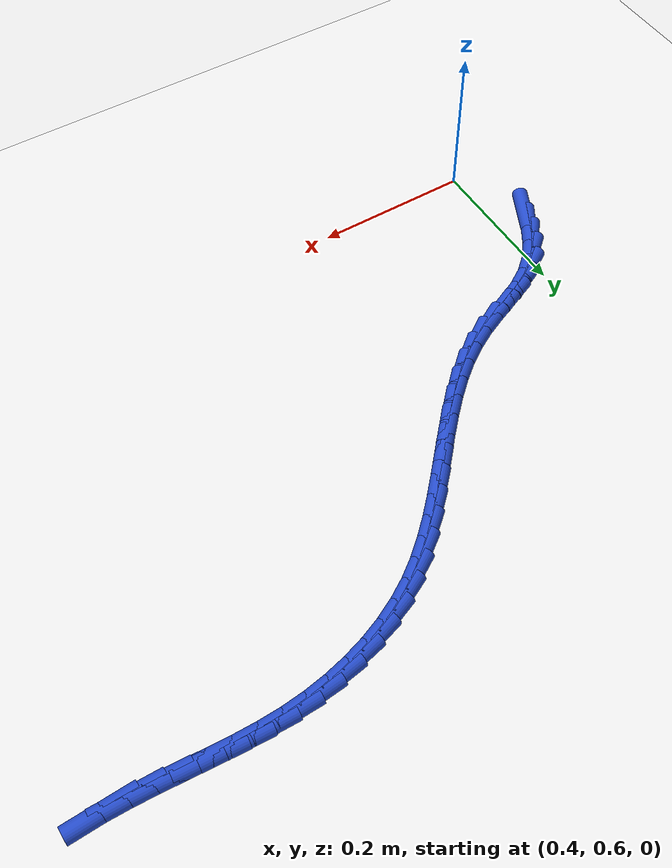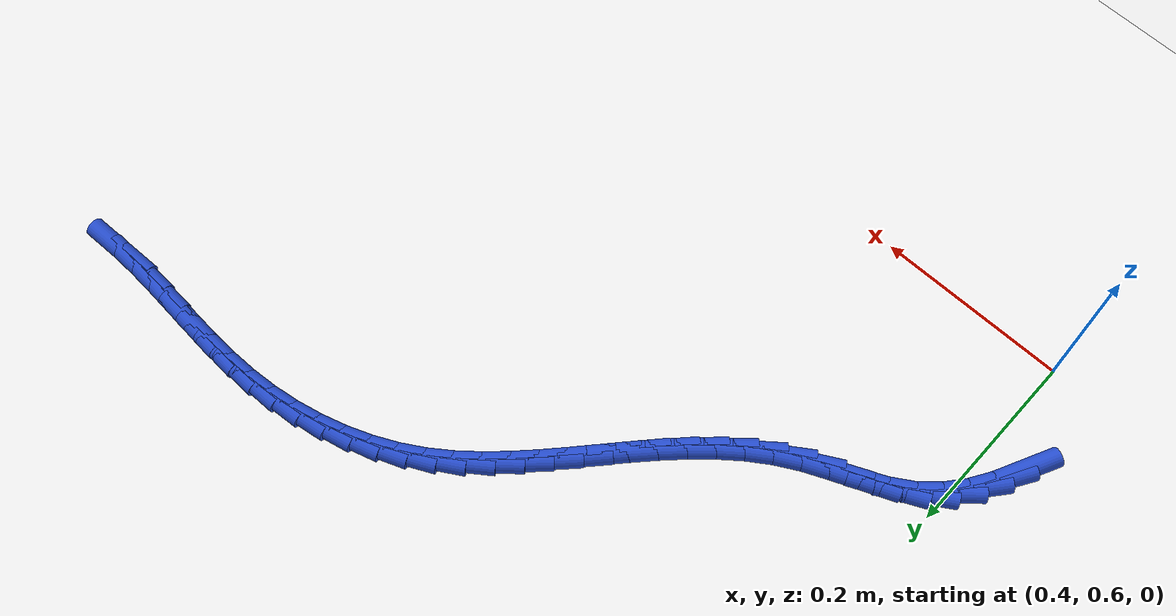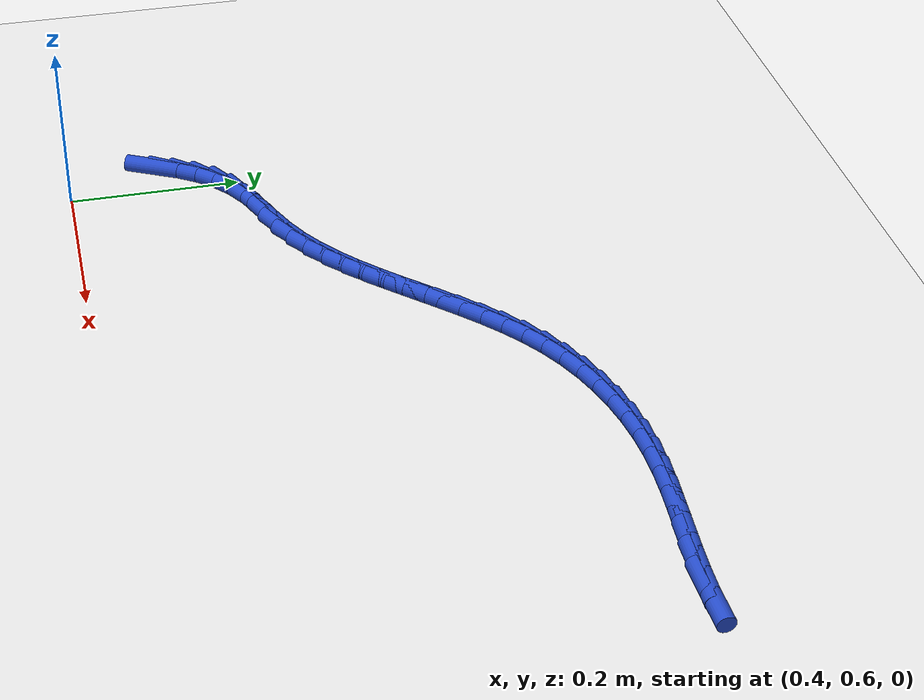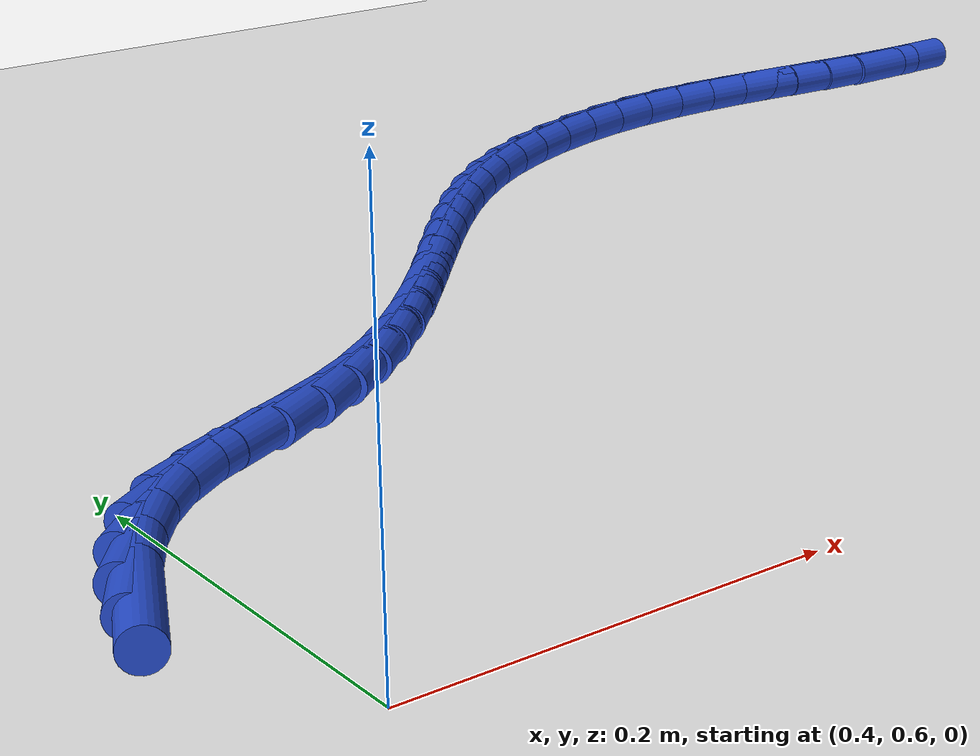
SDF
<sdf version="1.6">
 <world name="default">
  <model name="ground_plane">
   <static>1</static>
   <link name="link">
    <collision name="collision">
     <geometry><plane><normal>0 0 1</normal><size>100 100</size></plane></geometry>
     <surface><friction><ode><mu>100</mu><mu2>50</mu2></ode></friction></surface>
    </collision>
    <visual name="visual">
     <cast_shadows>0</cast_shadows>
     <geometry><plane><normal>0 0 1</normal><size>100 100</size></plane></geometry>
     <material>
      <script><uri>file://media/materials/scripts/gazebo.material</uri><name>Gazebo/WhiteGlow</name></script>
     </material>
    </visual>
   </link>
  </model>
  <model name="line">
   <link name="link_30">
    <pose>0.36268832998383616 0.7085970020839042 0.01 0 1.57 1.1177318025531953</pose>
    <collision name="collision">
     <geometry><cylinder><radius>0.01</radius><length>0.08</length></cylinder></geometry>
    </collision>
    <visual name="visual">
     <material>
      <script><name>Gazebo/Blue</name><uri>file://media/materials/scripts/gazebo.material</uri></script>
     </material>
     <geometry><cylinder><radius>0.01</radius><length>0.08</length></cylinder></geometry>
    </visual>
   </link>
   <link name="link_31">
    <pose>0.37431745973488123 0.732483952362341 0.01 0 1.57 1.0134871277024728</pose>
    <collision name="collision">
     <geometry><cylinder><radius>0.01</radius><length>0.08</length></cylinder></geometry>
    </collision>
    <visual name="visual">
     <material>
      <script><name>Gazebo/Blue</name><uri>file://media/materials/scripts/gazebo.material</uri></script>
     </material>
     <geometry><cylinder><radius>0.01</radius><length>0.08</length></cylinder></geometry>
    </visual>
   </link>
   <link name="link_32">
    <pose>0.3879580186429441 0.7543716247838177 0.01 0 1.57 0.8817394334140569</pose>
    <collision name="collision">
     <geometry><cylinder><radius>0.01</radius><length>0.08</length></cylinder></geometry>
    </collision>
    <visual name="visual">
     <material>
      <script><name>Gazebo/Blue</name><uri>file://media/materials/scripts/gazebo.material</uri></script>
     </material>
     <geometry><cylinder><radius>0.01</radius><length>0.08</length></cylinder></geometry>
    </visual>
   </link>
   <link name="link_33">
    <pose>0.40403640084455655 0.7738901036250615 0.01 0 1.57 0.7249146118301343</pose>
    <collision name="collision">
     <geometry><cylinder><radius>0.01</radius><length>0.08</length></cylinder></geometry>
    </collision>
    <visual name="visual">
     <material>
      <script><name>Gazebo/Blue</name><uri>file://media/materials/scripts/gazebo.material</uri></script>
     </material>
     <geometry><cylinder><radius>0.01</radius><length>0.08</length></cylinder></geometry>
    </visual>
   </link>
   <link name="link_34">
    <pose>0.4229790004762498 0.7906694731627986 0.01 0 1.57 0.5577782972668263</pose>
    <collision name="collision">
     <geometry><cylinder><radius>0.01</radius><length>0.08</length></cylinder></geometry>
    </collision>
    <visual name="visual">
     <material>
      <script><name>Gazebo/Blue</name><uri>file://media/materials/scripts/gazebo.material</uri></script>
     </material>
     <geometry><cylinder><radius>0.01</radius><length>0.08</length></cylinder></geometry>
    </visual>
   </link>
   <link name="link_35">
    <pose>0.4450906025545133 0.8044639919627228 0.01 0 1.57 0.4430533188256063</pose>
    <collision name="collision">
     <geometry><cylinder><radius>0.01</radius><length>0.08</length></cylinder></geometry>
    </collision>
    <visual name="visual">
     <material>
      <script><name>Gazebo/Blue</name><uri>file://media/materials/scripts/gazebo.material</uri></script>
     </material>
     <geometry><cylinder><radius>0.01</radius><length>0.08</length></cylinder></geometry>
    </visual>
   </link>
   <link name="link_36">
    <pose>0.4696217404852276 0.8161044081177452 0.01 0 1.57 0.4006804732066973</pose>
    <collision name="collision">
     <geometry><cylinder><radius>0.01</radius><length>0.08</length></cylinder></geometry>
    </collision>
    <visual name="visual">
     <material>
      <script><name>Gazebo/Blue</name><uri>file://media/materials/scripts/gazebo.material</uri></script>
     </material>
     <geometry><cylinder><radius>0.01</radius><length>0.08</length></cylinder></geometry>
    </visual>
   </link>
   <link name="link_37">
    <pose>0.495281894636061 0.8269739354921776 0.01 0 1.57 0.42330920103418146</pose>
    <collision name="collision">
     <geometry><cylinder><radius>0.01</radius><length>0.08</length></cylinder></geometry>
    </collision>
    <visual name="visual">
     <material>
      <script><name>Gazebo/Blue</name><uri>file://media/materials/scripts/gazebo.material</uri></script>
     </material>
     <geometry><cylinder><radius>0.01</radius><length>0.08</length></cylinder></geometry>
    </visual>
   </link>
   <link name="link_38">
    <pose>0.5207761265441244 0.8384602999897428 0.01 0 1.57 0.5047239543164519</pose>
    <collision name="collision">
     <geometry><cylinder><radius>0.01</radius><length>0.08</length></cylinder></geometry>
    </collision>
    <visual name="visual">
     <material>
      <script><name>Gazebo/Blue</name><uri>file://media/materials/scripts/gazebo.material</uri></script>
     </material>
     <geometry><cylinder><radius>0.01</radius><length>0.08</length></cylinder></geometry>
    </visual>
   </link>
   <link name="link_39">
    <pose>0.5449376407251897 0.8518083818414227 0.01 0 1.57 0.5968045073643752</pose>
    <collision name="collision">
     <geometry><cylinder><radius>0.01</radius><length>0.08</length></cylinder></geometry>
    </collision>
    <visual name="visual">
     <material>
      <script><name>Gazebo/Blue</name><uri>file://media/materials/scripts/gazebo.material</uri></script>
     </material>
     <geometry><cylinder><radius>0.01</radius><length>0.08</length></cylinder></geometry>
    </visual>
   </link>
   <link name="link_40">
    <pose>0.5675673778428116 0.8671842903419158 0.01 0 1.57 0.6748686698634557</pose>
    <collision name="collision">
     <geometry><cylinder><radius>0.01</radius><length>0.08</length></cylinder></geometry>
    </collision>
    <visual name="visual">
     <material>
      <script><name>Gazebo/Blue</name><uri>file://media/materials/scripts/gazebo.material</uri></script>
     </material>
     <geometry><cylinder><radius>0.01</radius><length>0.08</length></cylinder></geometry>
    </visual>
   </link>
   <link name="link_41">
    <pose>0.5889082469518588 0.8842614564289191 0.01 0 1.57 0.7377435125972711</pose>
    <collision name="collision">
     <geometry><cylinder><radius>0.01</radius><length>0.08</length></cylinder></geometry>
    </collision>
    <visual name="visual">
     <material>
      <script><name>Gazebo/Blue</name><uri>file://media/materials/scripts/gazebo.material</uri></script>
     </material>
     <geometry><cylinder><radius>0.01</radius><length>0.08</length></cylinder></geometry>
    </visual>
   </link>
   <link name="link_42">
    <pose>0.6092054243479514 0.9027107836638025 0.01 0 1.57 0.7852373563932779</pose>
    <collision name="collision">
     <geometry><cylinder><radius>0.01</radius><length>0.08</length></cylinder></geometry>
    </collision>
    <visual name="visual">
     <material>
      <script><name>Gazebo/Blue</name><uri>file://media/materials/scripts/gazebo.material</uri></script>
     </material>
     <geometry><cylinder><radius>0.01</radius><length>0.08</length></cylinder></geometry>
    </visual>
   </link>
   <link name="link_43">
    <pose>0.6287040863267105 0.9222031756079367 0.01 0 1.57 0.8175960525939158</pose>
    <collision name="collision">
     <geometry><cylinder><radius>0.01</radius><length>0.08</length></cylinder></geometry>
    </collision>
    <visual name="visual">
     <material>
      <script><name>Gazebo/Blue</name><uri>file://media/materials/scripts/gazebo.material</uri></script>
     </material>
     <geometry><cylinder><radius>0.01</radius><length>0.08</length></cylinder></geometry>
    </visual>
   </link>
   <link name="link_44">
    <pose>0.6476494091837564 0.942409535822691 0.01 0 1.57 0.8351697216548243</pose>
    <collision name="collision">
     <geometry><cylinder><radius>0.01</radius><length>0.08</length></cylinder></geometry>
    </collision>
    <visual name="visual">
     <material>
      <script><name>Gazebo/Blue</name><uri>file://media/materials/scripts/gazebo.material</uri></script>
     </material>
     <geometry><cylinder><radius>0.01</radius><length>0.08</length></cylinder></geometry>
    </visual>
   </link>
   <link name="link_45">
    <pose>0.66628656921471 0.9630007678694362 0.01 0 1.57 0.8381989010319875</pose>
    <collision name="collision">
     <geometry><cylinder><radius>0.01</radius><length>0.08</length></cylinder></geometry>
    </collision>
    <visual name="visual">
     <material>
      <script><name>Gazebo/Blue</name><uri>file://media/materials/scripts/gazebo.material</uri></script>
     </material>
     <geometry><cylinder><radius>0.01</radius><length>0.08</length></cylinder></geometry>
    </visual>
   </link>
   <link name="link_46">
    <pose>0.684860742715192 0.9836477753095424 0.01 0 1.57 0.8267066490759889</pose>
    <collision name="collision">
     <geometry><cylinder><radius>0.01</radius><length>0.08</length></cylinder></geometry>
    </collision>
    <visual name="visual">
     <material>
      <script><name>Gazebo/Blue</name><uri>file://media/materials/scripts/gazebo.material</uri></script>
     </material>
     <geometry><cylinder><radius>0.01</radius><length>0.08</length></cylinder></geometry>
    </visual>
   </link>
   <link name="link_47">
    <pose>0.7036171059808235 1.0040214617043794 0.01 0 1.57 0.8004795410268588</pose>
    <collision name="collision">
     <geometry><cylinder><radius>0.01</radius><length>0.08</length></cylinder></geometry>
    </collision>
    <visual name="visual">
     <material>
      <script><name>Gazebo/Blue</name><uri>file://media/materials/scripts/gazebo.material</uri></script>
     </material>
     <geometry><cylinder><radius>0.01</radius><length>0.08</length></cylinder></geometry>
    </visual>
   </link>
   <link name="link_48">
    <pose>0.7228008353072249 1.0237927306153183 0.01 0 1.57 0.7591349251705215</pose>
    <collision name="collision">
     <geometry><cylinder><radius>0.01</radius><length>0.08</length></cylinder></geometry>
    </collision>
    <visual name="visual">
     <material>
      <script><name>Gazebo/Blue</name><uri>file://media/materials/scripts/gazebo.material</uri></script>
     </material>
     <geometry><cylinder><radius>0.01</radius><length>0.08</length></cylinder></geometry>
    </visual>
   </link>
   <link name="link_49">
    <pose>0.742657106990017 1.0426324856037281 0.01 0 1.57 0.7022892694925332</pose>
    <collision name="collision">
     <geometry><cylinder><radius>0.01</radius><length>0.08</length></cylinder></geometry>
    </collision>
    <visual name="visual">
     <material>
      <script><name>Gazebo/Blue</name><uri>file://media/materials/scripts/gazebo.material</uri></script>
     </material>
     <geometry><cylinder><radius>0.01</radius><length>0.08</length></cylinder></geometry>
    </visual>
   </link>
   <link name="link_50">
    <pose>0.7634310973248204 1.0602116302309796 0.01 0 1.57 0.6298491340203288</pose>
    <collision name="collision">
     <geometry><cylinder><radius>0.01</radius><length>0.08</length></cylinder></geometry>
    </collision>
    <visual name="visual">
     <material>
      <script><name>Gazebo/Blue</name><uri>file://media/materials/scripts/gazebo.material</uri></script>
     </material>
     <geometry><cylinder><radius>0.01</radius><length>0.08</length></cylinder></geometry>
    </visual>
   </link>
   <link name="link_51">
    <pose>0.7853679826072556 1.0762010680584426 0.01 0 1.57 0.5436345084912292</pose>
    <collision name="collision">
     <geometry><cylinder><radius>0.01</radius><length>0.08</length></cylinder></geometry>
    </collision>
    <visual name="visual">
     <material>
      <script><name>Gazebo/Blue</name><uri>file://media/materials/scripts/gazebo.material</uri></script>
     </material>
     <geometry><cylinder><radius>0.01</radius><length>0.08</length></cylinder></geometry>
    </visual>
   </link>
   <link name="link_52">
    <pose>0.8086833155387171 1.0902924094232795 0.01 0 1.57 0.45632815377998504</pose>
    <collision name="collision">
     <geometry><cylinder><radius>0.01</radius><length>0.08</length></cylinder></geometry>
    </collision>
    <visual name="visual">
     <material>
      <script><name>Gazebo/Blue</name><uri>file://media/materials/scripts/gazebo.material</uri></script>
     </material>
     <geometry><cylinder><radius>0.01</radius><length>0.08</length></cylinder></geometry>
    </visual>
   </link>
   <link name="link_53">
    <pose>0.8333046072003384 1.102378604621736 0.01 0 1.57 0.3741257655127779</pose>
    <collision name="collision">
     <geometry><cylinder><radius>0.01</radius><length>0.08</length></cylinder></geometry>
    </collision>
    <visual name="visual">
     <material>
      <script><name>Gazebo/Blue</name><uri>file://media/materials/scripts/gazebo.material</uri></script>
     </material>
     <geometry><cylinder><radius>0.01</radius><length>0.08</length></cylinder></geometry>
    </visual>
   </link>
   <link name="link_54">
    <pose>0.8589971999080522 1.112465959278777 0.01 0 1.57 0.29621777647125097</pose>
    <collision name="collision">
     <geometry><cylinder><radius>0.01</radius><length>0.08</length></cylinder></geometry>
    </collision>
    <visual name="visual">
     <material>
      <script><name>Gazebo/Blue</name><uri>file://media/materials/scripts/gazebo.material</uri></script>
     </material>
     <geometry><cylinder><radius>0.01</radius><length>0.08</length></cylinder></geometry>
    </visual>
   </link>
   <link name="link_55">
    <pose>0.8855246218578622 1.120562047082061 0.01 0 1.57 0.22163352774274542</pose>
    <collision name="collision">
     <geometry><cylinder><radius>0.01</radius><length>0.08</length></cylinder></geometry>
    </collision>
    <visual name="visual">
     <material>
      <script><name>Gazebo/Blue</name><uri>file://media/materials/scripts/gazebo.material</uri></script>
     </material>
     <geometry><cylinder><radius>0.01</radius><length>0.08</length></cylinder></geometry>
    </visual>
   </link>
   <link name="link_56">
    <pose>0.9126504012457706 1.1266744417192462 0.01 0 1.57 0.14935690914547053</pose>
    <collision name="collision">
     <geometry><cylinder><radius>0.01</radius><length>0.08</length></cylinder></geometry>
    </collision>
    <visual name="visual">
     <material>
      <script><name>Gazebo/Blue</name><uri>file://media/materials/scripts/gazebo.material</uri></script>
     </material>
     <geometry><cylinder><radius>0.01</radius><length>0.08</length></cylinder></geometry>
    </visual>
   </link>
   <link name="link_57">
    <pose>0.9401380662677813 1.130810716877991 0.01 0 1.57 0.07841883388084162</pose>
    <collision name="collision">
     <geometry><cylinder><radius>0.01</radius><length>0.08</length></cylinder></geometry>
    </collision>
    <visual name="visual">
     <material>
      <script><name>Gazebo/Blue</name><uri>file://media/materials/scripts/gazebo.material</uri></script>
     </material>
     <geometry><cylinder><radius>0.01</radius><length>0.08</length></cylinder></geometry>
    </visual>
   </link>
   <link name="link_58">
    <pose>0.9677522634258335 1.1329806398324542 0.01 0 1.57 0.013577635960771876</pose>
    <collision name="collision">
     <geometry><cylinder><radius>0.01</radius><length>0.08</length></cylinder></geometry>
    </collision>
    <visual name="visual">
     <material>
      <script><name>Gazebo/Blue</name><uri>file://media/materials/scripts/gazebo.material</uri></script>
     </material>
     <geometry><cylinder><radius>0.01</radius><length>0.08</length></cylinder></geometry>
    </visual>
   </link>
   <link name="link_59">
    <pose>0.9953398503078965 1.1333552370637323 0.01 0 1.57 -0.0356006324384078</pose>
    <collision name="collision">
     <geometry><cylinder><radius>0.01</radius><length>0.08</length></cylinder></geometry>
    </collision>
    <visual name="visual">
     <material>
      <script><name>Gazebo/Blue</name><uri>file://media/materials/scripts/gazebo.material</uri></script>
     </material>
     <geometry><cylinder><radius>0.01</radius><length>0.08</length></cylinder></geometry>
    </visual>
   </link>
   <link name="link_60">
    <pose>1.0228846569137442 1.1323742100402863 0.01 0 1.57 -0.06795273163460823</pose>
    <collision name="collision">
     <geometry><cylinder><radius>0.01</radius><length>0.08</length></cylinder></geometry>
    </collision>
    <visual name="visual">
     <material>
      <script><name>Gazebo/Blue</name><uri>file://media/materials/scripts/gazebo.material</uri></script>
     </material>
     <geometry><cylinder><radius>0.01</radius><length>0.08</length></cylinder></geometry>
    </visual>
   </link>
   <link name="link_61">
    <pose>1.0503834866731274 1.130502707954606 0.01 0 1.57 -0.08347973531880296</pose>
    <collision name="collision">
     <geometry><cylinder><radius>0.01</radius><length>0.08</length></cylinder></geometry>
    </collision>
    <visual name="visual">
     <material>
      <script><name>Gazebo/Blue</name><uri>file://media/materials/scripts/gazebo.material</uri></script>
     </material>
     <geometry><cylinder><radius>0.01</radius><length>0.08</length></cylinder></geometry>
    </visual>
   </link>
   <link name="link_62">
    <pose>1.0778331430157964 1.12820587999918 0.01 0 1.57 -0.0821949855352124</pose>
    <collision name="collision">
     <geometry><cylinder><radius>0.01</radius><length>0.08</length></cylinder></geometry>
    </collision>
    <visual name="visual">
     <material>
      <script><name>Gazebo/Blue</name><uri>file://media/materials/scripts/gazebo.material</uri></script>
     </material>
     <geometry><cylinder><radius>0.01</radius><length>0.08</length></cylinder></geometry>
    </visual>
   </link>
   <link name="link_63">
    <pose>1.105230429371502 1.125948875366498 0.01 0 1.57 -0.06399158496204717</pose>
    <collision name="collision">
     <geometry><cylinder><radius>0.01</radius><length>0.08</length></cylinder></geometry>
    </collision>
    <visual name="visual">
     <material>
      <script><name>Gazebo/Blue</name><uri>file://media/materials/scripts/gazebo.material</uri></script>
     </material>
     <geometry><cylinder><radius>0.01</radius><length>0.08</length></cylinder></geometry>
    </visual>
   </link>
   <link name="link_64">
    <pose>1.1325721491699943 1.1241968432490481 0.01 0 1.57 -0.028651456260452145</pose>
    <collision name="collision">
     <geometry><cylinder><radius>0.01</radius><length>0.08</length></cylinder></geometry>
    </collision>
    <visual name="visual">
     <material>
      <script><name>Gazebo/Blue</name><uri>file://media/materials/scripts/gazebo.material</uri></script>
     </material>
     <geometry><cylinder><radius>0.01</radius><length>0.08</length></cylinder></geometry>
    </visual>
   </link>
   <link name="link_65">
    <pose>1.1598551058410238 1.1234149328393206 0.01 0 1.57 0.0239974703181446</pose>
    <collision name="collision">
     <geometry><cylinder><radius>0.01</radius><length>0.08</length></cylinder></geometry>
    </collision>
    <visual name="visual">
     <material>
      <script><name>Gazebo/Blue</name><uri>file://media/materials/scripts/gazebo.material</uri></script>
     </material>
     <geometry><cylinder><radius>0.01</radius><length>0.08</length></cylinder></geometry>
    </visual>
   </link>
  </model>
 </world>
</sdf>
